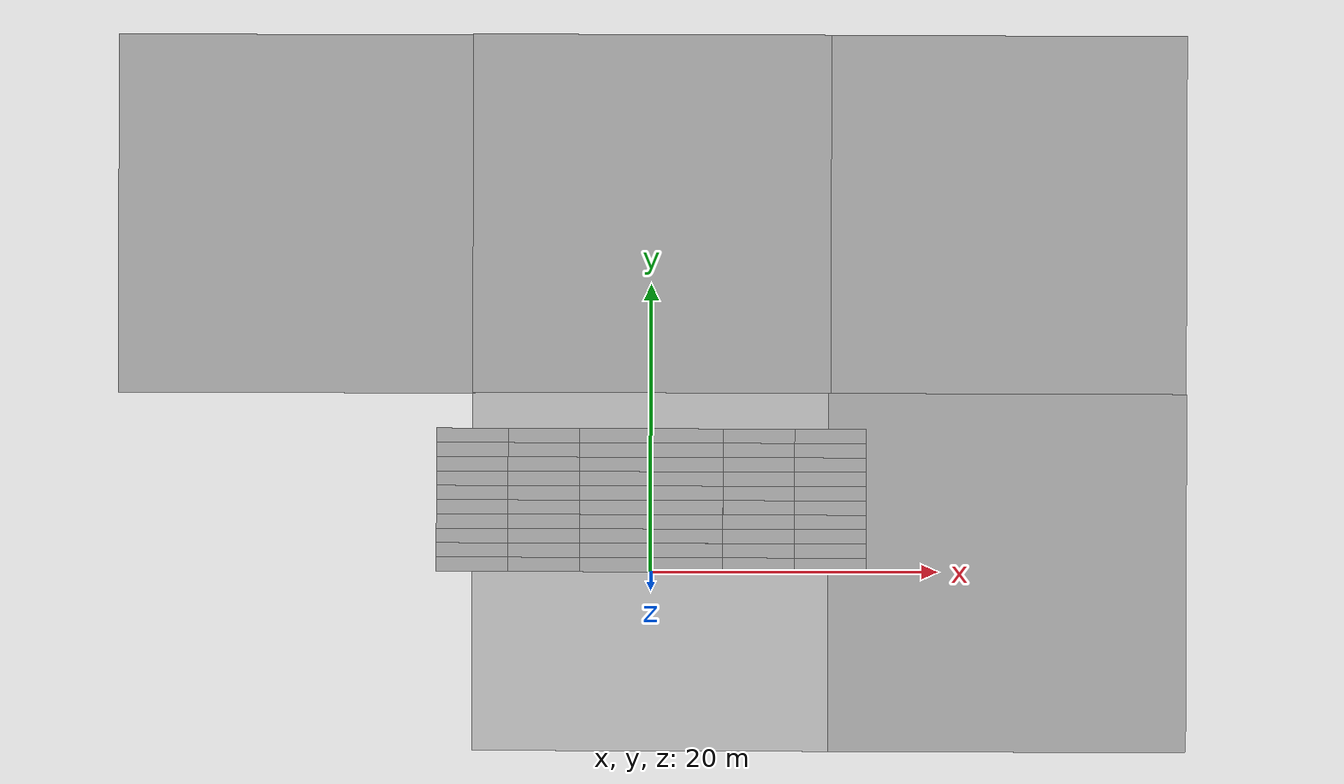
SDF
<sdf version="1.6">
 <world name="default">
  <model name="cmp9767m_ground_3">
   <static>1</static>
   <link name="dirt">
    <collision name="collision">
     <geometry><plane><normal>0 0 1</normal><size>25 25</size></plane></geometry>
     <surface><friction><ode><mu>100</mu><mu2>50</mu2></ode></friction></surface>
    </collision>
    <visual name="visual">
     <cast_shadows>0</cast_shadows>
     <geometry><plane><normal>0 0 1</normal><size>25 25</size></plane></geometry>
     <material>
      <script>
       <uri>model://cmp9767m_ground_3/materials/scripts</uri>
       <uri>model://cmp9767m_ground_3/materials/textures</uri>
       <name>cmp9767m_ground_3/dirt</name>
      </script>
     </material>
    </visual>
   </link>
  </model>
  <model name="cmp9767m_ground_3_0">
   <static>1</static>
   <link name="dirt">
    <collision name="collision">
     <geometry><plane><normal>0 0 1</normal><size>25 25</size></plane></geometry>
     <surface><friction><ode><mu>100</mu><mu2>50</mu2></ode></friction></surface>
    </collision>
    <visual name="visual">
     <cast_shadows>0</cast_shadows>
     <geometry><plane><normal>0 0 1</normal><size>25 25</size></plane></geometry>
     <material>
      <script>
       <uri>model://cmp9767m_ground_3/materials/scripts</uri>
       <uri>model://cmp9767m_ground_3/materials/textures</uri>
       <name>cmp9767m_ground_3/dirt</name>
      </script>
     </material>
    </visual>
   </link>
   <pose>-0 25 0 0 -0 0</pose>
  </model>
  <model name="cmp9767m_ground_3_2">
   <static>1</static>
   <link name="dirt">
    <collision name="collision">
     <geometry><plane><normal>0 0 1</normal><size>25 25</size></plane></geometry>
     <surface><friction><ode><mu>100</mu><mu2>50</mu2></ode></friction></surface>
    </collision>
    <visual name="visual">
     <cast_shadows>0</cast_shadows>
     <geometry><plane><normal>0 0 1</normal><size>25 25</size></plane></geometry>
     <material>
      <script>
       <uri>model://cmp9767m_ground_3/materials/scripts</uri>
       <uri>model://cmp9767m_ground_3/materials/textures</uri>
       <name>cmp9767m_ground_3/dirt</name>
      </script>
     </material>
    </visual>
   </link>
   <pose>-24.7414 24.922 0 0 -0 0</pose>
  </model>
  <model name="cmp9767m_ground_3_6">
   <static>1</static>
   <link name="dirt">
    <collision name="collision">
     <geometry><plane><normal>0 0 1</normal><size>25 25</size></plane></geometry>
     <surface><friction><ode><mu>100</mu><mu2>50</mu2></ode></friction></surface>
    </collision>
    <visual name="visual">
     <cast_shadows>0</cast_shadows>
     <geometry><plane><normal>0 0 1</normal><size>25 25</size></plane></geometry>
     <material>
      <script>
       <uri>model://cmp9767m_ground_3/materials/scripts</uri>
       <uri>model://cmp9767m_ground_3/materials/textures</uri>
       <name>cmp9767m_ground_3/dirt</name>
      </script>
     </material>
    </visual>
   </link>
   <pose>24.8613 0.003309 0 0 -0 0</pose>
  </model>
  <model name="cmp9767m_ground_3_7">
   <static>1</static>
   <link name="dirt">
    <collision name="collision">
     <geometry><plane><normal>0 0 1</normal><size>25 25</size></plane></geometry>
     <surface><friction><ode><mu>100</mu><mu2>50</mu2></ode></friction></surface>
    </collision>
    <visual name="visual">
     <cast_shadows>0</cast_shadows>
     <geometry><plane><normal>0 0 1</normal><size>25 25</size></plane></geometry>
     <material>
      <script>
       <uri>model://cmp9767m_ground_3/materials/scripts</uri>
       <uri>model://cmp9767m_ground_3/materials/textures</uri>
       <name>cmp9767m_ground_3/dirt</name>
      </script>
     </material>
    </visual>
   </link>
   <pose>24.8226 24.9841 0 0 -0 0</pose>
  </model>
  <model name="crop_rows_11">
   <static>1</static>
   <link name="crop_rows">
    <pose>0 0 0.025 0 -0 0</pose>
    <collision name="collision">
     <geometry><plane><normal>0 0 1</normal><size>5 1</size></plane></geometry>
     <surface><friction><ode><mu>100</mu><mu2>50</mu2></ode></friction></surface>
    </collision>
    <visual name="visual">
     <cast_shadows>0</cast_shadows>
     <geometry><plane><normal>0 0 1</normal><size>5 1</size></plane></geometry>
     <material>
      <script>
       <uri>model://crop_rows/materials/scripts</uri>
       <uri>model://crop_rows/materials/textures</uri>
       <name>crop_rows/real_texture</name>
      </script>
     </material>
    </visual>
   </link>
   <pose>2.5 0.5 0 0 -0 0</pose>
  </model>
  <model name="crop_rows_12">
   <static>1</static>
   <link name="crop_rows">
    <pose>0 0 0.025 0 -0 0</pose>
    <collision name="collision">
     <geometry><plane><normal>0 0 1</normal><size>5 1</size></plane></geometry>
     <surface><friction><ode><mu>100</mu><mu2>50</mu2></ode></friction></surface>
    </collision>
    <visual name="visual">
     <cast_shadows>0</cast_shadows>
     <geometry><plane><normal>0 0 1</normal><size>5 1</size></plane></geometry>
     <material>
      <script>
       <uri>model://crop_rows/materials/scripts</uri>
       <uri>model://crop_rows/materials/textures</uri>
       <name>crop_rows/real_texture</name>
      </script>
     </material>
    </visual>
   </link>
   <pose>2.5 1.5 0 0 -0 0</pose>
  </model>
  <model name="crop_rows_13">
   <static>1</static>
   <link name="crop_rows">
    <pose>0 0 0.025 0 -0 0</pose>
    <collision name="collision">
     <geometry><plane><normal>0 0 1</normal><size>5 1</size></plane></geometry>
     <surface><friction><ode><mu>100</mu><mu2>50</mu2></ode></friction></surface>
    </collision>
    <visual name="visual">
     <cast_shadows>0</cast_shadows>
     <geometry><plane><normal>0 0 1</normal><size>5 1</size></plane></geometry>
     <material>
      <script>
       <uri>model://crop_rows/materials/scripts</uri>
       <uri>model://crop_rows/materials/textures</uri>
       <name>crop_rows/real_texture</name>
      </script>
     </material>
    </visual>
   </link>
   <pose>2.50339 2.50065 0 0 -0 0</pose>
  </model>
  <model name="crop_rows_14">
   <static>1</static>
   <link name="crop_rows">
    <pose>0 0 0.025 0 -0 0</pose>
    <collision name="collision">
     <geometry><plane><normal>0 0 1</normal><size>5 1</size></plane></geometry>
     <surface><friction><ode><mu>100</mu><mu2>50</mu2></ode></friction></surface>
    </collision>
    <visual name="visual">
     <cast_shadows>0</cast_shadows>
     <geometry><plane><normal>0 0 1</normal><size>5 1</size></plane></geometry>
     <material>
      <script>
       <uri>model://crop_rows/materials/scripts</uri>
       <uri>model://crop_rows/materials/textures</uri>
       <name>crop_rows/real_texture</name>
      </script>
     </material>
    </visual>
   </link>
   <pose>2.5 3.5 0 0 -0 0</pose>
  </model>
  <model name="crop_rows_15">
   <static>1</static>
   <link name="crop_rows">
    <pose>0 0 0.025 0 -0 0</pose>
    <collision name="collision">
     <geometry><plane><normal>0 0 1</normal><size>5 1</size></plane></geometry>
     <surface><friction><ode><mu>100</mu><mu2>50</mu2></ode></friction></surface>
    </collision>
    <visual name="visual">
     <cast_shadows>0</cast_shadows>
     <geometry><plane><normal>0 0 1</normal><size>5 1</size></plane></geometry>
     <material>
      <script>
       <uri>model://crop_rows/materials/scripts</uri>
       <uri>model://crop_rows/materials/textures</uri>
       <name>crop_rows/real_texture</name>
      </script>
     </material>
    </visual>
   </link>
   <pose>-2.5 0.5 0 0 -0 0</pose>
  </model>
  <model name="crop_rows_16">
   <static>1</static>
   <link name="crop_rows">
    <pose>0 0 0.025 0 -0 0</pose>
    <collision name="collision">
     <geometry><plane><normal>0 0 1</normal><size>5 1</size></plane></geometry>
     <surface><friction><ode><mu>100</mu><mu2>50</mu2></ode></friction></surface>
    </collision>
    <visual name="visual">
     <cast_shadows>0</cast_shadows>
     <geometry><plane><normal>0 0 1</normal><size>5 1</size></plane></geometry>
     <material>
      <script>
       <uri>model://crop_rows/materials/scripts</uri>
       <uri>model://crop_rows/materials/textures</uri>
       <name>crop_rows/real_texture</name>
      </script>
     </material>
    </visual>
   </link>
   <pose>-2.5 1.5 0 0 -0 0</pose>
  </model>
  <model name="crop_rows_17">
   <static>1</static>
   <link name="crop_rows">
    <pose>0 0 0.025 0 -0 0</pose>
    <collision name="collision">
     <geometry><plane><normal>0 0 1</normal><size>5 1</size></plane></geometry>
     <surface><friction><ode><mu>100</mu><mu2>50</mu2></ode></friction></surface>
    </collision>
    <visual name="visual">
     <cast_shadows>0</cast_shadows>
     <geometry><plane><normal>0 0 1</normal><size>5 1</size></plane></geometry>
     <material>
      <script>
       <uri>model://crop_rows/materials/scripts</uri>
       <uri>model://crop_rows/materials/textures</uri>
       <name>crop_rows/real_texture</name>
      </script>
     </material>
    </visual>
   </link>
   <pose>-2.5 2.5 0 0 -0 0</pose>
  </model>
  <model name="crop_rows_18">
   <static>1</static>
   <link name="crop_rows">
    <pose>0 0 0.025 0 -0 0</pose>
    <collision name="collision">
     <geometry><plane><normal>0 0 1</normal><size>5 1</size></plane></geometry>
     <surface><friction><ode><mu>100</mu><mu2>50</mu2></ode></friction></surface>
    </collision>
    <visual name="visual">
     <cast_shadows>0</cast_shadows>
     <geometry><plane><normal>0 0 1</normal><size>5 1</size></plane></geometry>
     <material>
      <script>
       <uri>model://crop_rows/materials/scripts</uri>
       <uri>model://crop_rows/materials/textures</uri>
       <name>crop_rows/real_texture</name>
      </script>
     </material>
    </visual>
   </link>
   <pose>-2.5 3.5 0 0 -0 0</pose>
  </model>
  <model name="crop_rows_25">
   <static>1</static>
   <link name="crop_rows">
    <pose>0 0 0.025 0 -0 0</pose>
    <collision name="collision">
     <geometry><plane><normal>0 0 1</normal><size>5 1</size></plane></geometry>
     <surface><friction><ode><mu>100</mu><mu2>50</mu2></ode></friction></surface>
    </collision>
    <visual name="visual">
     <cast_shadows>0</cast_shadows>
     <geometry><plane><normal>0 0 1</normal><size>5 1</size></plane></geometry>
     <material>
      <script>
       <uri>model://crop_rows/materials/scripts</uri>
       <uri>model://crop_rows/materials/textures</uri>
       <name>crop_rows/real_texture</name>
      </script>
     </material>
    </visual>
   </link>
   <pose>7.5 0.5 0 0 -0 0</pose>
  </model>
  <model name="crop_rows_26">
   <static>1</static>
   <link name="crop_rows">
    <pose>0 0 0.025 0 -0 0</pose>
    <collision name="collision">
     <geometry><plane><normal>0 0 1</normal><size>5 1</size></plane></geometry>
     <surface><friction><ode><mu>100</mu><mu2>50</mu2></ode></friction></surface>
    </collision>
    <visual name="visual">
     <cast_shadows>0</cast_shadows>
     <geometry><plane><normal>0 0 1</normal><size>5 1</size></plane></geometry>
     <material>
      <script>
       <uri>model://crop_rows/materials/scripts</uri>
       <uri>model://crop_rows/materials/textures</uri>
       <name>crop_rows/real_texture</name>
      </script>
     </material>
    </visual>
   </link>
   <pose>7.5 1.5 0 0 -0 0</pose>
  </model>
  <model name="crop_rows_27">
   <static>1</static>
   <link name="crop_rows">
    <pose>0 0 0.025 0 -0 0</pose>
    <collision name="collision">
     <geometry><plane><normal>0 0 1</normal><size>5 1</size></plane></geometry>
     <surface><friction><ode><mu>100</mu><mu2>50</mu2></ode></friction></surface>
    </collision>
    <visual name="visual">
     <cast_shadows>0</cast_shadows>
     <geometry><plane><normal>0 0 1</normal><size>5 1</size></plane></geometry>
     <material>
      <script>
       <uri>model://crop_rows/materials/scripts</uri>
       <uri>model://crop_rows/materials/textures</uri>
       <name>crop_rows/real_texture</name>
      </script>
     </material>
    </visual>
   </link>
   <pose>7.5 2.5 0 0 -0 0</pose>
  </model>
  <model name="crop_rows_28">
   <static>1</static>
   <link name="crop_rows">
    <pose>0 0 0.025 0 -0 0</pose>
    <collision name="collision">
     <geometry><plane><normal>0 0 1</normal><size>5 1</size></plane></geometry>
     <surface><friction><ode><mu>100</mu><mu2>50</mu2></ode></friction></surface>
    </collision>
    <visual name="visual">
     <cast_shadows>0</cast_shadows>
     <geometry><plane><normal>0 0 1</normal><size>5 1</size></plane></geometry>
     <material>
      <script>
       <uri>model://crop_rows/materials/scripts</uri>
       <uri>model://crop_rows/materials/textures</uri>
       <name>crop_rows/real_texture</name>
      </script>
     </material>
    </visual>
   </link>
   <pose>7.5 3.5 0 0 -0 0</pose>
  </model>
  <model name="crop_rows_29">
   <static>1</static>
   <link name="crop_rows">
    <pose>0 0 0.025 0 -0 0</pose>
    <collision name="collision">
     <geometry><plane><normal>0 0 1</normal><size>5 1</size></plane></geometry>
     <surface><friction><ode><mu>100</mu><mu2>50</mu2></ode></friction></surface>
    </collision>
    <visual name="visual">
     <cast_shadows>0</cast_shadows>
     <geometry><plane><normal>0 0 1</normal><size>5 1</size></plane></geometry>
     <material>
      <script>
       <uri>model://crop_rows/materials/scripts</uri>
       <uri>model://crop_rows/materials/textures</uri>
       <name>crop_rows/real_texture</name>
      </script>
     </material>
    </visual>
   </link>
   <pose>-2.5 4.5 0 0 -0 0</pose>
  </model>
  <model name="crop_rows_30">
   <static>1</static>
   <link name="crop_rows">
    <pose>0 0 0.025 0 -0 0</pose>
    <collision name="collision">
     <geometry><plane><normal>0 0 1</normal><size>5 1</size></plane></geometry>
     <surface><friction><ode><mu>100</mu><mu2>50</mu2></ode></friction></surface>
    </collision>
    <visual name="visual">
     <cast_shadows>0</cast_shadows>
     <geometry><plane><normal>0 0 1</normal><size>5 1</size></plane></geometry>
     <material>
      <script>
       <uri>model://crop_rows/materials/scripts</uri>
       <uri>model://crop_rows/materials/textures</uri>
       <name>crop_rows/real_texture</name>
      </script>
     </material>
    </visual>
   </link>
   <pose>2.5 4.5 0 0 -0 0</pose>
  </model>
  <model name="crop_rows_31">
   <static>1</static>
   <link name="crop_rows">
    <pose>0 0 0.025 0 -0 0</pose>
    <collision name="collision">
     <geometry><plane><normal>0 0 1</normal><size>5 1</size></plane></geometry>
     <surface><friction><ode><mu>100</mu><mu2>50</mu2></ode></friction></surface>
    </collision>
    <visual name="visual">
     <cast_shadows>0</cast_shadows>
     <geometry><plane><normal>0 0 1</normal><size>5 1</size></plane></geometry>
     <material>
      <script>
       <uri>model://crop_rows/materials/scripts</uri>
       <uri>model://crop_rows/materials/textures</uri>
       <name>crop_rows/real_texture</name>
      </script>
     </material>
    </visual>
   </link>
   <pose>7.50726 4.5 0 0 -0 0</pose>
  </model>
  <model name="crop_rows_32">
   <static>1</static>
   <link name="crop_rows">
    <pose>0 0 0.025 0 -0 0</pose>
    <collision name="collision">
     <geometry><plane><normal>0 0 1</normal><size>5 1</size></plane></geometry>
     <surface><friction><ode><mu>100</mu><mu2>50</mu2></ode></friction></surface>
    </collision>
    <visual name="visual">
     <cast_shadows>0</cast_shadows>
     <geometry><plane><normal>0 0 1</normal><size>5 1</size></plane></geometry>
     <material>
      <script>
       <uri>model://crop_rows/materials/scripts</uri>
       <uri>model://crop_rows/materials/textures</uri>
       <name>crop_rows/real_texture</name>
      </script>
     </material>
    </visual>
   </link>
   <pose>-2.5 5.5 0 0 -0 0</pose>
  </model>
  <model name="crop_rows_33">
   <static>1</static>
   <link name="crop_rows">
    <pose>0 0 0.025 0 -0 0</pose>
    <collision name="collision">
     <geometry><plane><normal>0 0 1</normal><size>5 1</size></plane></geometry>
     <surface><friction><ode><mu>100</mu><mu2>50</mu2></ode></friction></surface>
    </collision>
    <visual name="visual">
     <cast_shadows>0</cast_shadows>
     <geometry><plane><normal>0 0 1</normal><size>5 1</size></plane></geometry>
     <material>
      <script>
       <uri>model://crop_rows/materials/scripts</uri>
       <uri>model://crop_rows/materials/textures</uri>
       <name>crop_rows/real_texture</name>
      </script>
     </material>
    </visual>
   </link>
   <pose>2.5 5.5 0 0 -0 0</pose>
  </model>
  <model name="crop_rows_34">
   <static>1</static>
   <link name="crop_rows">
    <pose>0 0 0.025 0 -0 0</pose>
    <collision name="collision">
     <geometry><plane><normal>0 0 1</normal><size>5 1</size></plane></geometry>
     <surface><friction><ode><mu>100</mu><mu2>50</mu2></ode></friction></surface>
    </collision>
    <visual name="visual">
     <cast_shadows>0</cast_shadows>
     <geometry><plane><normal>0 0 1</normal><size>5 1</size></plane></geometry>
     <material>
      <script>
       <uri>model://crop_rows/materials/scripts</uri>
       <uri>model://crop_rows/materials/textures</uri>
       <name>crop_rows/real_texture</name>
      </script>
     </material>
    </visual>
   </link>
   <pose>7.5 5.5 0 0 -0 0</pose>
  </model>
  <model name="crop_rows_35">
   <static>1</static>
   <link name="crop_rows">
    <pose>0 0 0.025 0 -0 0</pose>
    <collision name="collision">
     <geometry><plane><normal>0 0 1</normal><size>5 1</size></plane></geometry>
     <surface><friction><ode><mu>100</mu><mu2>50</mu2></ode></friction></surface>
    </collision>
    <visual name="visual">
     <cast_shadows>0</cast_shadows>
     <geometry><plane><normal>0 0 1</normal><size>5 1</size></plane></geometry>
     <material>
      <script>
       <uri>model://crop_rows/materials/scripts</uri>
       <uri>model://crop_rows/materials/textures</uri>
       <name>crop_rows/real_texture</name>
      </script>
     </material>
    </visual>
   </link>
   <pose>-2.5 6.5 0 0 -0 0</pose>
  </model>
  <model name="crop_rows_36">
   <static>1</static>
   <link name="crop_rows">
    <pose>0 0 0.025 0 -0 0</pose>
    <collision name="collision">
     <geometry><plane><normal>0 0 1</normal><size>5 1</size></plane></geometry>
     <surface><friction><ode><mu>100</mu><mu2>50</mu2></ode></friction></surface>
    </collision>
    <visual name="visual">
     <cast_shadows>0</cast_shadows>
     <geometry><plane><normal>0 0 1</normal><size>5 1</size></plane></geometry>
     <material>
      <script>
       <uri>model://crop_rows/materials/scripts</uri>
       <uri>model://crop_rows/materials/textures</uri>
       <name>crop_rows/real_texture</name>
      </script>
     </material>
    </visual>
   </link>
   <pose>2.5 6.5 0 0 -0 0</pose>
  </model>
  <model name="crop_rows_37">
   <static>1</static>
   <link name="crop_rows">
    <pose>0 0 0.025 0 -0 0</pose>
    <collision name="collision">
     <geometry><plane><normal>0 0 1</normal><size>5 1</size></plane></geometry>
     <surface><friction><ode><mu>100</mu><mu2>50</mu2></ode></friction></surface>
    </collision>
    <visual name="visual">
     <cast_shadows>0</cast_shadows>
     <geometry><plane><normal>0 0 1</normal><size>5 1</size></plane></geometry>
     <material>
      <script>
       <uri>model://crop_rows/materials/scripts</uri>
       <uri>model://crop_rows/materials/textures</uri>
       <name>crop_rows/real_texture</name>
      </script>
     </material>
    </visual>
   </link>
   <pose>7.5 6.5 0 0 -0 0</pose>
  </model>
  <model name="crop_rows_41">
   <static>1</static>
   <link name="crop_rows">
    <pose>0 0 0.025 0 -0 0</pose>
    <collision name="collision">
     <geometry><plane><normal>0 0 1</normal><size>5 1</size></plane></geometry>
     <surface><friction><ode><mu>100</mu><mu2>50</mu2></ode></friction></surface>
    </collision>
    <visual name="visual">
     <cast_shadows>0</cast_shadows>
     <geometry><plane><normal>0 0 1</normal><size>5 1</size></plane></geometry>
     <material>
      <script>
       <uri>model://crop_rows/materials/scripts</uri>
       <uri>model://crop_rows/materials/textures</uri>
       <name>crop_rows/real_texture</name>
      </script>
     </material>
    </visual>
   </link>
   <pose>-2.5 7.5 0 0 -0 0</pose>
  </model>
  <model name="crop_rows_42">
   <static>1</static>
   <link name="crop_rows">
    <pose>0 0 0.025 0 -0 0</pose>
    <collision name="collision">
     <geometry><plane><normal>0 0 1</normal><size>5 1</size></plane></geometry>
     <surface><friction><ode><mu>100</mu><mu2>50</mu2></ode></friction></surface>
    </collision>
    <visual name="visual">
     <cast_shadows>0</cast_shadows>
     <geometry><plane><normal>0 0 1</normal><size>5 1</size></plane></geometry>
     <material>
      <script>
       <uri>model://crop_rows/materials/scripts</uri>
       <uri>model://crop_rows/materials/textures</uri>
       <name>crop_rows/real_texture</name>
      </script>
     </material>
    </visual>
   </link>
   <pose>2.5 7.5 0 0 -0 0</pose>
  </model>
  <model name="crop_rows_43">
   <static>1</static>
   <link name="crop_rows">
    <pose>0 0 0.025 0 -0 0</pose>
    <collision name="collision">
     <geometry><plane><normal>0 0 1</normal><size>5 1</size></plane></geometry>
     <surface><friction><ode><mu>100</mu><mu2>50</mu2></ode></friction></surface>
    </collision>
    <visual name="visual">
     <cast_shadows>0</cast_shadows>
     <geometry><plane><normal>0 0 1</normal><size>5 1</size></plane></geometry>
     <material>
      <script>
       <uri>model://crop_rows/materials/scripts</uri>
       <uri>model://crop_rows/materials/textures</uri>
       <name>crop_rows/real_texture</name>
      </script>
     </material>
    </visual>
   </link>
   <pose>7.5 7.5 0 0 -0 0</pose>
  </model>
  <model name="crop_rows_55">
   <static>1</static>
   <link name="crop_rows">
    <pose>0 0 0.025 0 -0 0</pose>
    <collision name="collision">
     <geometry><plane><normal>0 0 1</normal><size>5 1</size></plane></geometry>
     <surface><friction><ode><mu>100</mu><mu2>50</mu2></ode></friction></surface>
    </collision>
    <visual name="visual">
     <cast_shadows>0</cast_shadows>
     <geometry><plane><normal>0 0 1</normal><size>5 1</size></plane></geometry>
     <material>
      <script>
       <uri>model://crop_rows/materials/scripts</uri>
       <uri>model://crop_rows/materials/textures</uri>
       <name>crop_rows/real_texture</name>
      </script>
     </material>
    </visual>
   </link>
   <pose>12.5 0.5 0 0 -0 0</pose>
  </model>
  <model name="crop_rows_56">
   <static>1</static>
   <link name="crop_rows">
    <pose>0 0 0.025 0 -0 0</pose>
    <collision name="collision">
     <geometry><plane><normal>0 0 1</normal><size>5 1</size></plane></geometry>
     <surface><friction><ode><mu>100</mu><mu2>50</mu2></ode></friction></surface>
    </collision>
    <visual name="visual">
     <cast_shadows>0</cast_shadows>
     <geometry><plane><normal>0 0 1</normal><size>5 1</size></plane></geometry>
     <material>
      <script>
       <uri>model://crop_rows/materials/scripts</uri>
       <uri>model://crop_rows/materials/textures</uri>
       <name>crop_rows/real_texture</name>
      </script>
     </material>
    </visual>
   </link>
   <pose>12.5 1.5 0 0 -0 0</pose>
  </model>
  <model name="crop_rows_57">
   <static>1</static>
   <link name="crop_rows">
    <pose>0 0 0.025 0 -0 0</pose>
    <collision name="collision">
     <geometry><plane><normal>0 0 1</normal><size>5 1</size></plane></geometry>
     <surface><friction><ode><mu>100</mu><mu2>50</mu2></ode></friction></surface>
    </collision>
    <visual name="visual">
     <cast_shadows>0</cast_shadows>
     <geometry><plane><normal>0 0 1</normal><size>5 1</size></plane></geometry>
     <material>
      <script>
       <uri>model://crop_rows/materials/scripts</uri>
       <uri>model://crop_rows/materials/textures</uri>
       <name>crop_rows/real_texture</name>
      </script>
     </material>
    </visual>
   </link>
   <pose>12.5 2.5 0 0 -0 0</pose>
  </model>
  <model name="crop_rows_58">
   <static>1</static>
   <link name="crop_rows">
    <pose>0 0 0.025 0 -0 0</pose>
    <collision name="collision">
     <geometry><plane><normal>0 0 1</normal><size>5 1</size></plane></geometry>
     <surface><friction><ode><mu>100</mu><mu2>50</mu2></ode></friction></surface>
    </collision>
    <visual name="visual">
     <cast_shadows>0</cast_shadows>
     <geometry><plane><normal>0 0 1</normal><size>5 1</size></plane></geometry>
     <material>
      <script>
       <uri>model://crop_rows/materials/scripts</uri>
       <uri>model://crop_rows/materials/textures</uri>
       <name>crop_rows/real_texture</name>
      </script>
     </material>
    </visual>
   </link>
   <pose>12.5 3.5 0 0 -0 0</pose>
  </model>
  <model name="crop_rows_59">
   <static>1</static>
   <link name="crop_rows">
    <pose>0 0 0.025 0 -0 0</pose>
    <collision name="collision">
     <geometry><plane><normal>0 0 1</normal><size>5 1</size></plane></geometry>
     <surface><friction><ode><mu>100</mu><mu2>50</mu2></ode></friction></surface>
    </collision>
    <visual name="visual">
     <cast_shadows>0</cast_shadows>
     <geometry><plane><normal>0 0 1</normal><size>5 1</size></plane></geometry>
     <material>
      <script>
       <uri>model://crop_rows/materials/scripts</uri>
       <uri>model://crop_rows/materials/textures</uri>
       <name>crop_rows/real_texture</name>
      </script>
     </material>
    </visual>
   </link>
   <pose>12.5 4.5 0 0 -0 0</pose>
  </model>
  <model name="crop_rows_60">
   <static>1</static>
   <link name="crop_rows">
    <pose>0 0 0.025 0 -0 0</pose>
    <collision name="collision">
     <geometry><plane><normal>0 0 1</normal><size>5 1</size></plane></geometry>
     <surface><friction><ode><mu>100</mu><mu2>50</mu2></ode></friction></surface>
    </collision>
    <visual name="visual">
     <cast_shadows>0</cast_shadows>
     <geometry><plane><normal>0 0 1</normal><size>5 1</size></plane></geometry>
     <material>
      <script>
       <uri>model://crop_rows/materials/scripts</uri>
       <uri>model://crop_rows/materials/textures</uri>
       <name>crop_rows/real_texture</name>
      </script>
     </material>
    </visual>
   </link>
   <pose>12.5 5.5 0 0 -0 0</pose>
  </model>
  <model name="crop_rows_61">
   <static>1</static>
   <link name="crop_rows">
    <pose>0 0 0.025 0 -0 0</pose>
    <collision name="collision">
     <geometry><plane><normal>0 0 1</normal><size>5 1</size></plane></geometry>
     <surface><friction><ode><mu>100</mu><mu2>50</mu2></ode></friction></surface>
    </collision>
    <visual name="visual">
     <cast_shadows>0</cast_shadows>
     <geometry><plane><normal>0 0 1</normal><size>5 1</size></plane></geometry>
     <material>
      <script>
       <uri>model://crop_rows/materials/scripts</uri>
       <uri>model://crop_rows/materials/textures</uri>
       <name>crop_rows/real_texture</name>
      </script>
     </material>
    </visual>
   </link>
   <pose>12.5 6.5 0 0 -0 0</pose>
  </model>
  <model name="crop_rows_62">
   <static>1</static>
   <link name="crop_rows">
    <pose>0 0 0.025 0 -0 0</pose>
    <collision name="collision">
     <geometry><plane><normal>0 0 1</normal><size>5 1</size></plane></geometry>
     <surface><friction><ode><mu>100</mu><mu2>50</mu2></ode></friction></surface>
    </collision>
    <visual name="visual">
     <cast_shadows>0</cast_shadows>
     <geometry><plane><normal>0 0 1</normal><size>5 1</size></plane></geometry>
     <material>
      <script>
       <uri>model://crop_rows/materials/scripts</uri>
       <uri>model://crop_rows/materials/textures</uri>
       <name>crop_rows/real_texture</name>
      </script>
     </material>
    </visual>
   </link>
   <pose>12.5 7.5 0 0 -0 0</pose>
  </model>
  <model name="crop_rows_81">
   <static>1</static>
   <link name="crop_rows">
    <pose>0 0 0.025 0 -0 0</pose>
    <collision name="collision">
     <geometry><plane><normal>0 0 1</normal><size>5 1</size></plane></geometry>
     <surface><friction><ode><mu>100</mu><mu2>50</mu2></ode></friction></surface>
    </collision>
    <visual name="visual">
     <cast_shadows>0</cast_shadows>
     <geometry><plane><normal>0 0 1</normal><size>5 1</size></plane></geometry>
     <material>
      <script>
       <uri>model://crop_rows/materials/scripts</uri>
       <uri>model://crop_rows/materials/textures</uri>
       <name>crop_rows/real_texture</name>
      </script>
     </material>
    </visual>
   </link>
   <pose>-7.5 0.5 0 0 -0 0</pose>
  </model>
  <model name="crop_rows_82">
   <static>1</static>
   <link name="crop_rows">
    <pose>0 0 0.025 0 -0 0</pose>
    <collision name="collision">
     <geometry><plane><normal>0 0 1</normal><size>5 1</size></plane></geometry>
     <surface><friction><ode><mu>100</mu><mu2>50</mu2></ode></friction></surface>
    </collision>
    <visual name="visual">
     <cast_shadows>0</cast_shadows>
     <geometry><plane><normal>0 0 1</normal><size>5 1</size></plane></geometry>
     <material>
      <script>
       <uri>model://crop_rows/materials/scripts</uri>
       <uri>model://crop_rows/materials/textures</uri>
       <name>crop_rows/real_texture</name>
      </script>
     </material>
    </visual>
   </link>
   <pose>-7.5 1.5 0 0 -0 0</pose>
  </model>
  <model name="crop_rows_83">
   <static>1</static>
   <link name="crop_rows">
    <pose>0 0 0.025 0 -0 0</pose>
    <collision name="collision">
     <geometry><plane><normal>0 0 1</normal><size>5 1</size></plane></geometry>
     <surface><friction><ode><mu>100</mu><mu2>50</mu2></ode></friction></surface>
    </collision>
    <visual name="visual">
     <cast_shadows>0</cast_shadows>
     <geometry><plane><normal>0 0 1</normal><size>5 1</size></plane></geometry>
     <material>
      <script>
       <uri>model://crop_rows/materials/scripts</uri>
       <uri>model://crop_rows/materials/textures</uri>
       <name>crop_rows/real_texture</name>
      </script>
     </material>
    </visual>
   </link>
   <pose>-7.5 2.5 0 0 -0 0</pose>
  </model>
  <model name="crop_rows_84">
   <static>1</static>
   <link name="crop_rows">
    <pose>0 0 0.025 0 -0 0</pose>
    <collision name="collision">
     <geometry><plane><normal>0 0 1</normal><size>5 1</size></plane></geometry>
     <surface><friction><ode><mu>100</mu><mu2>50</mu2></ode></friction></surface>
    </collision>
    <visual name="visual">
     <cast_shadows>0</cast_shadows>
     <geometry><plane><normal>0 0 1</normal><size>5 1</size></plane></geometry>
     <material>
      <script>
       <uri>model://crop_rows/materials/scripts</uri>
       <uri>model://crop_rows/materials/textures</uri>
       <name>crop_rows/real_texture</name>
      </script>
     </material>
    </visual>
   </link>
   <pose>-7.5 3.5 0 0 -0 0</pose>
  </model>
  <model name="crop_rows_85">
   <static>1</static>
   <link name="crop_rows">
    <pose>0 0 0.025 0 -0 0</pose>
    <collision name="collision">
     <geometry><plane><normal>0 0 1</normal><size>5 1</size></plane></geometry>
     <surface><friction><ode><mu>100</mu><mu2>50</mu2></ode></friction></surface>
    </collision>
    <visual name="visual">
     <cast_shadows>0</cast_shadows>
     <geometry><plane><normal>0 0 1</normal><size>5 1</size></plane></geometry>
     <material>
      <script>
       <uri>model://crop_rows/materials/scripts</uri>
       <uri>model://crop_rows/materials/textures</uri>
       <name>crop_rows/real_texture</name>
      </script>
     </material>
    </visual>
   </link>
   <pose>-7.5 4.5 0 0 -0 0</pose>
  </model>
  <model name="crop_rows_86">
   <static>1</static>
   <link name="crop_rows">
    <pose>0 0 0.025 0 -0 0</pose>
    <collision name="collision">
     <geometry><plane><normal>0 0 1</normal><size>5 1</size></plane></geometry>
     <surface><friction><ode><mu>100</mu><mu2>50</mu2></ode></friction></surface>
    </collision>
    <visual name="visual">
     <cast_shadows>0</cast_shadows>
     <geometry><plane><normal>0 0 1</normal><size>5 1</size></plane></geometry>
     <material>
      <script>
       <uri>model://crop_rows/materials/scripts</uri>
       <uri>model://crop_rows/materials/textures</uri>
       <name>crop_rows/real_texture</name>
      </script>
     </material>
    </visual>
   </link>
   <pose>-7.5 5.5 0 0 -0 0</pose>
  </model>
  <model name="crop_rows_87">
   <static>1</static>
   <link name="crop_rows">
    <pose>0 0 0.025 0 -0 0</pose>
    <collision name="collision">
     <geometry><plane><normal>0 0 1</normal><size>5 1</size></plane></geometry>
     <surface><friction><ode><mu>100</mu><mu2>50</mu2></ode></friction></surface>
    </collision>
    <visual name="visual">
     <cast_shadows>0</cast_shadows>
     <geometry><plane><normal>0 0 1</normal><size>5 1</size></plane></geometry>
     <material>
      <script>
       <uri>model://crop_rows/materials/scripts</uri>
       <uri>model://crop_rows/materials/textures</uri>
       <name>crop_rows/real_texture</name>
      </script>
     </material>
    </visual>
   </link>
   <pose>-7.5 6.5 0 0 -0 0</pose>
  </model>
  <model name="crop_rows_88">
   <static>1</static>
   <link name="crop_rows">
    <pose>0 0 0.025 0 -0 0</pose>
    <collision name="collision">
     <geometry><plane><normal>0 0 1</normal><size>5 1</size></plane></geometry>
     <surface><friction><ode><mu>100</mu><mu2>50</mu2></ode></friction></surface>
    </collision>
    <visual name="visual">
     <cast_shadows>0</cast_shadows>
     <geometry><plane><normal>0 0 1</normal><size>5 1</size></plane></geometry>
     <material>
      <script>
       <uri>model://crop_rows/materials/scripts</uri>
       <uri>model://crop_rows/materials/textures</uri>
       <name>crop_rows/real_texture</name>
      </script>
     </material>
    </visual>
   </link>
   <pose>-7.5 7.5 0 0 -0 0</pose>
  </model>
  <model name="crop_rows_89">
   <static>1</static>
   <link name="crop_rows">
    <pose>0 0 0.025 0 -0 0</pose>
    <collision name="collision">
     <geometry><plane><normal>0 0 1</normal><size>5 1</size></plane></geometry>
     <surface><friction><ode><mu>100</mu><mu2>50</mu2></ode></friction></surface>
    </collision>
    <visual name="visual">
     <cast_shadows>0</cast_shadows>
     <geometry><plane><normal>0 0 1</normal><size>5 1</size></plane></geometry>
     <material>
      <script>
       <uri>model://crop_rows/materials/scripts</uri>
       <uri>model://crop_rows/materials/textures</uri>
       <name>crop_rows/real_texture</name>
      </script>
     </material>
    </visual>
   </link>
   <pose>12.5 8.5 0 0 -0 0</pose>
  </model>
  <model name="crop_rows_90">
   <static>1</static>
   <link name="crop_rows">
    <pose>0 0 0.025 0 -0 0</pose>
    <collision name="collision">
     <geometry><plane><normal>0 0 1</normal><size>5 1</size></plane></geometry>
     <surface><friction><ode><mu>100</mu><mu2>50</mu2></ode></friction></surface>
    </collision>
    <visual name="visual">
     <cast_shadows>0</cast_shadows>
     <geometry><plane><normal>0 0 1</normal><size>5 1</size></plane></geometry>
     <material>
      <script>
       <uri>model://crop_rows/materials/scripts</uri>
       <uri>model://crop_rows/materials/textures</uri>
       <name>crop_rows/real_texture</name>
      </script>
     </material>
    </visual>
   </link>
   <pose>7.5 8.5 0 0 -0 0</pose>
  </model>
  <model name="crop_rows_91">
   <static>1</static>
   <link name="crop_rows">
    <pose>0 0 0.025 0 -0 0</pose>
    <collision name="collision">
     <geometry><plane><normal>0 0 1</normal><size>5 1</size></plane></geometry>
     <surface><friction><ode><mu>100</mu><mu2>50</mu2></ode></friction></surface>
    </collision>
    <visual name="visual">
     <cast_shadows>0</cast_shadows>
     <geometry><plane><normal>0 0 1</normal><size>5 1</size></plane></geometry>
     <material>
      <script>
       <uri>model://crop_rows/materials/scripts</uri>
       <uri>model://crop_rows/materials/textures</uri>
       <name>crop_rows/real_texture</name>
      </script>
     </material>
    </visual>
   </link>
   <pose>2.5 8.5 0 0 -0 0</pose>
  </model>
  <model name="crop_rows_92">
   <static>1</static>
   <link name="crop_rows">
    <pose>0 0 0.025 0 -0 0</pose>
    <collision name="collision">
     <geometry><plane><normal>0 0 1</normal><size>5 1</size></plane></geometry>
     <surface><friction><ode><mu>100</mu><mu2>50</mu2></ode></friction></surface>
    </collision>
    <visual name="visual">
     <cast_shadows>0</cast_shadows>
     <geometry><plane><normal>0 0 1</normal><size>5 1</size></plane></geometry>
     <material>
      <script>
       <uri>model://crop_rows/materials/scripts</uri>
       <uri>model://crop_rows/materials/textures</uri>
       <name>crop_rows/real_texture</name>
      </script>
     </material>
    </visual>
   </link>
   <pose>-2.5 8.5 0 0 -0 0</pose>
  </model>
  <model name="crop_rows_93">
   <static>1</static>
   <link name="crop_rows">
    <pose>0 0 0.025 0 -0 0</pose>
    <collision name="collision">
     <geometry><plane><normal>0 0 1</normal><size>5 1</size></plane></geometry>
     <surface><friction><ode><mu>100</mu><mu2>50</mu2></ode></friction></surface>
    </collision>
    <visual name="visual">
     <cast_shadows>0</cast_shadows>
     <geometry><plane><normal>0 0 1</normal><size>5 1</size></plane></geometry>
     <material>
      <script>
       <uri>model://crop_rows/materials/scripts</uri>
       <uri>model://crop_rows/materials/textures</uri>
       <name>crop_rows/real_texture</name>
      </script>
     </material>
    </visual>
   </link>
   <pose>-7.5 8.5 0 0 -0 0</pose>
  </model>
  <model name="crop_rows_94">
   <static>1</static>
   <link name="crop_rows">
    <pose>0 0 0.025 0 -0 0</pose>
    <collision name="collision">
     <geometry><plane><normal>0 0 1</normal><size>5 1</size></plane></geometry>
     <surface><friction><ode><mu>100</mu><mu2>50</mu2></ode></friction></surface>
    </collision>
    <visual name="visual">
     <cast_shadows>0</cast_shadows>
     <geometry><plane><normal>0 0 1</normal><size>5 1</size></plane></geometry>
     <material>
      <script>
       <uri>model://crop_rows/materials/scripts</uri>
       <uri>model://crop_rows/materials/textures</uri>
       <name>crop_rows/real_texture</name>
      </script>
     </material>
    </visual>
   </link>
   <pose>-7.5 9.5 0 0 -0 0</pose>
  </model>
  <model name="crop_rows_95">
   <static>1</static>
   <link name="crop_rows">
    <pose>0 0 0.025 0 -0 0</pose>
    <collision name="collision">
     <geometry><plane><normal>0 0 1</normal><size>5 1</size></plane></geometry>
     <surface><friction><ode><mu>100</mu><mu2>50</mu2></ode></friction></surface>
    </collision>
    <visual name="visual">
     <cast_shadows>0</cast_shadows>
     <geometry><plane><normal>0 0 1</normal><size>5 1</size></plane></geometry>
     <material>
      <script>
       <uri>model://crop_rows/materials/scripts</uri>
       <uri>model://crop_rows/materials/textures</uri>
       <name>crop_rows/real_texture</name>
      </script>
     </material>
    </visual>
   </link>
   <pose>-2.5 9.5 0 0 -0 0</pose>
  </model>
  <model name="crop_rows_96">
   <static>1</static>
   <link name="crop_rows">
    <pose>0 0 0.025 0 -0 0</pose>
    <collision name="collision">
     <geometry><plane><normal>0 0 1</normal><size>5 1</size></plane></geometry>
     <surface><friction><ode><mu>100</mu><mu2>50</mu2></ode></friction></surface>
    </collision>
    <visual name="visual">
     <cast_shadows>0</cast_shadows>
     <geometry><plane><normal>0 0 1</normal><size>5 1</size></plane></geometry>
     <material>
      <script>
       <uri>model://crop_rows/materials/scripts</uri>
       <uri>model://crop_rows/materials/textures</uri>
       <name>crop_rows/real_texture</name>
      </script>
     </material>
    </visual>
   </link>
   <pose>2.5 9.5 0 0 -0 0</pose>
  </model>
  <model name="crop_rows_97">
   <static>1</static>
   <link name="crop_rows">
    <pose>0 0 0.025 0 -0 0</pose>
    <collision name="collision">
     <geometry><plane><normal>0 0 1</normal><size>5 1</size></plane></geometry>
     <surface><friction><ode><mu>100</mu><mu2>50</mu2></ode></friction></surface>
    </collision>
    <visual name="visual">
     <cast_shadows>0</cast_shadows>
     <geometry><plane><normal>0 0 1</normal><size>5 1</size></plane></geometry>
     <material>
      <script>
       <uri>model://crop_rows/materials/scripts</uri>
       <uri>model://crop_rows/materials/textures</uri>
       <name>crop_rows/real_texture</name>
      </script>
     </material>
    </visual>
   </link>
   <pose>7.5 9.5 0 0 -0 0</pose>
  </model>
  <model name="crop_rows_98">
   <static>1</static>
   <link name="crop_rows">
    <pose>0 0 0.025 0 -0 0</pose>
    <collision name="collision">
     <geometry><plane><normal>0 0 1</normal><size>5 1</size></plane></geometry>
     <surface><friction><ode><mu>100</mu><mu2>50</mu2></ode></friction></surface>
    </collision>
    <visual name="visual">
     <cast_shadows>0</cast_shadows>
     <geometry><plane><normal>0 0 1</normal><size>5 1</size></plane></geometry>
     <material>
      <script>
       <uri>model://crop_rows/materials/scripts</uri>
       <uri>model://crop_rows/materials/textures</uri>
       <name>crop_rows/real_texture</name>
      </script>
     </material>
    </visual>
   </link>
   <pose>12.5 9.5 0 0 -0 0</pose>
  </model>
  <model name="crop_rows_99">
   <static>1</static>
   <link name="crop_rows">
    <pose>0 0 0.025 0 -0 0</pose>
    <collision name="collision">
     <geometry><plane><normal>0 0 1</normal><size>5 1</size></plane></geometry>
     <surface><friction><ode><mu>100</mu><mu2>50</mu2></ode></friction></surface>
    </collision>
    <visual name="visual">
     <cast_shadows>0</cast_shadows>
     <geometry><plane><normal>0 0 1</normal><size>5 1</size></plane></geometry>
     <material>
      <script>
       <uri>model://crop_rows/materials/scripts</uri>
       <uri>model://crop_rows/materials/textures</uri>
       <name>crop_rows/real_texture</name>
      </script>
     </material>
    </visual>
   </link>
   <pose>-12.5 9.5 0 0 -0 0</pose>
  </model>
  <model name="crop_rows_100">
   <static>1</static>
   <link name="crop_rows">
    <pose>0 0 0.025 0 -0 0</pose>
    <collision name="collision">
     <geometry><plane><normal>0 0 1</normal><size>5 1</size></plane></geometry>
     <surface><friction><ode><mu>100</mu><mu2>50</mu2></ode></friction></surface>
    </collision>
    <visual name="visual">
     <cast_shadows>0</cast_shadows>
     <geometry><plane><normal>0 0 1</normal><size>5 1</size></plane></geometry>
     <material>
      <script>
       <uri>model://crop_rows/materials/scripts</uri>
       <uri>model://crop_rows/materials/textures</uri>
       <name>crop_rows/real_texture</name>
      </script>
     </material>
    </visual>
   </link>
   <pose>-12.5 8.5 0 0 -0 0</pose>
  </model>
  <model name="crop_rows_101">
   <static>1</static>
   <link name="crop_rows">
    <pose>0 0 0.025 0 -0 0</pose>
    <collision name="collision">
     <geometry><plane><normal>0 0 1</normal><size>5 1</size></plane></geometry>
     <surface><friction><ode><mu>100</mu><mu2>50</mu2></ode></friction></surface>
    </collision>
    <visual name="visual">
     <cast_shadows>0</cast_shadows>
     <geometry><plane><normal>0 0 1</normal><size>5 1</size></plane></geometry>
     <material>
      <script>
       <uri>model://crop_rows/materials/scripts</uri>
       <uri>model://crop_rows/materials/textures</uri>
       <name>crop_rows/real_texture</name>
      </script>
     </material>
    </visual>
   </link>
   <pose>-12.5 7.5 0 0 -0 0</pose>
  </model>
  <model name="crop_rows_102">
   <static>1</static>
   <link name="crop_rows">
    <pose>0 0 0.025 0 -0 0</pose>
    <collision name="collision">
     <geometry><plane><normal>0 0 1</normal><size>5 1</size></plane></geometry>
     <surface><friction><ode><mu>100</mu><mu2>50</mu2></ode></friction></surface>
    </collision>
    <visual name="visual">
     <cast_shadows>0</cast_shadows>
     <geometry><plane><normal>0 0 1</normal><size>5 1</size></plane></geometry>
     <material>
      <script>
       <uri>model://crop_rows/materials/scripts</uri>
       <uri>model://crop_rows/materials/textures</uri>
       <name>crop_rows/real_texture</name>
      </script>
     </material>
    </visual>
   </link>
   <pose>-12.5 6.5 0 0 -0 0</pose>
  </model>
  <model name="crop_rows_103">
   <static>1</static>
   <link name="crop_rows">
    <pose>0 0 0.025 0 -0 0</pose>
    <collision name="collision">
     <geometry><plane><normal>0 0 1</normal><size>5 1</size></plane></geometry>
     <surface><friction><ode><mu>100</mu><mu2>50</mu2></ode></friction></surface>
    </collision>
    <visual name="visual">
     <cast_shadows>0</cast_shadows>
     <geometry><plane><normal>0 0 1</normal><size>5 1</size></plane></geometry>
     <material>
      <script>
       <uri>model://crop_rows/materials/scripts</uri>
       <uri>model://crop_rows/materials/textures</uri>
       <name>crop_rows/real_texture</name>
      </script>
     </material>
    </visual>
   </link>
   <pose>-12.5 5.5 0 0 -0 0</pose>
  </model>
  <model name="crop_rows_104">
   <static>1</static>
   <link name="crop_rows">
    <pose>0 0 0.025 0 -0 0</pose>
    <collision name="collision">
     <geometry><plane><normal>0 0 1</normal><size>5 1</size></plane></geometry>
     <surface><friction><ode><mu>100</mu><mu2>50</mu2></ode></friction></surface>
    </collision>
    <visual name="visual">
     <cast_shadows>0</cast_shadows>
     <geometry><plane><normal>0 0 1</normal><size>5 1</size></plane></geometry>
     <material>
      <script>
       <uri>model://crop_rows/materials/scripts</uri>
       <uri>model://crop_rows/materials/textures</uri>
       <name>crop_rows/real_texture</name>
      </script>
     </material>
    </visual>
   </link>
   <pose>-12.5 4.5 0 0 -0 0</pose>
  </model>
  <model name="crop_rows_105">
   <static>1</static>
   <link name="crop_rows">
    <pose>0 0 0.025 0 -0 0</pose>
    <collision name="collision">
     <geometry><plane><normal>0 0 1</normal><size>5 1</size></plane></geometry>
     <surface><friction><ode><mu>100</mu><mu2>50</mu2></ode></friction></surface>
    </collision>
    <visual name="visual">
     <cast_shadows>0</cast_shadows>
     <geometry><plane><normal>0 0 1</normal><size>5 1</size></plane></geometry>
     <material>
      <script>
       <uri>model://crop_rows/materials/scripts</uri>
       <uri>model://crop_rows/materials/textures</uri>
       <name>crop_rows/real_texture</name>
      </script>
     </material>
    </visual>
   </link>
   <pose>-12.5 3.5 0 0 -0 0</pose>
  </model>
  <model name="crop_rows_106">
   <static>1</static>
   <link name="crop_rows">
    <pose>0 0 0.025 0 -0 0</pose>
    <collision name="collision">
     <geometry><plane><normal>0 0 1</normal><size>5 1</size></plane></geometry>
     <surface><friction><ode><mu>100</mu><mu2>50</mu2></ode></friction></surface>
    </collision>
    <visual name="visual">
     <cast_shadows>0</cast_shadows>
     <geometry><plane><normal>0 0 1</normal><size>5 1</size></plane></geometry>
     <material>
      <script>
       <uri>model://crop_rows/materials/scripts</uri>
       <uri>model://crop_rows/materials/textures</uri>
       <name>crop_rows/real_texture</name>
      </script>
     </material>
    </visual>
   </link>
   <pose>-12.5 2.5 0 0 -0 0</pose>
  </model>
  <model name="crop_rows_107">
   <static>1</static>
   <link name="crop_rows">
    <pose>0 0 0.025 0 -0 0</pose>
    <collision name="collision">
     <geometry><plane><normal>0 0 1</normal><size>5 1</size></plane></geometry>
     <surface><friction><ode><mu>100</mu><mu2>50</mu2></ode></friction></surface>
    </collision>
    <visual name="visual">
     <cast_shadows>0</cast_shadows>
     <geometry><plane><normal>0 0 1</normal><size>5 1</size></plane></geometry>
     <material>
      <script>
       <uri>model://crop_rows/materials/scripts</uri>
       <uri>model://crop_rows/materials/textures</uri>
       <name>crop_rows/real_texture</name>
      </script>
     </material>
    </visual>
   </link>
   <pose>-12.5 1.5 0 0 -0 0</pose>
  </model>
  <model name="crop_rows_108">
   <static>1</static>
   <link name="crop_rows">
    <pose>0 0 0.025 0 -0 0</pose>
    <collision name="collision">
     <geometry><plane><normal>0 0 1</normal><size>5 1</size></plane></geometry>
     <surface><friction><ode><mu>100</mu><mu2>50</mu2></ode></friction></surface>
    </collision>
    <visual name="visual">
     <cast_shadows>0</cast_shadows>
     <geometry><plane><normal>0 0 1</normal><size>5 1</size></plane></geometry>
     <material>
      <script>
       <uri>model://crop_rows/materials/scripts</uri>
       <uri>model://crop_rows/materials/textures</uri>
       <name>crop_rows/real_texture</name>
      </script>
     </material>
    </visual>
   </link>
   <pose>-12.5 0.5 0 0 -0 0</pose>
  </model>
 </world>
</sdf>
